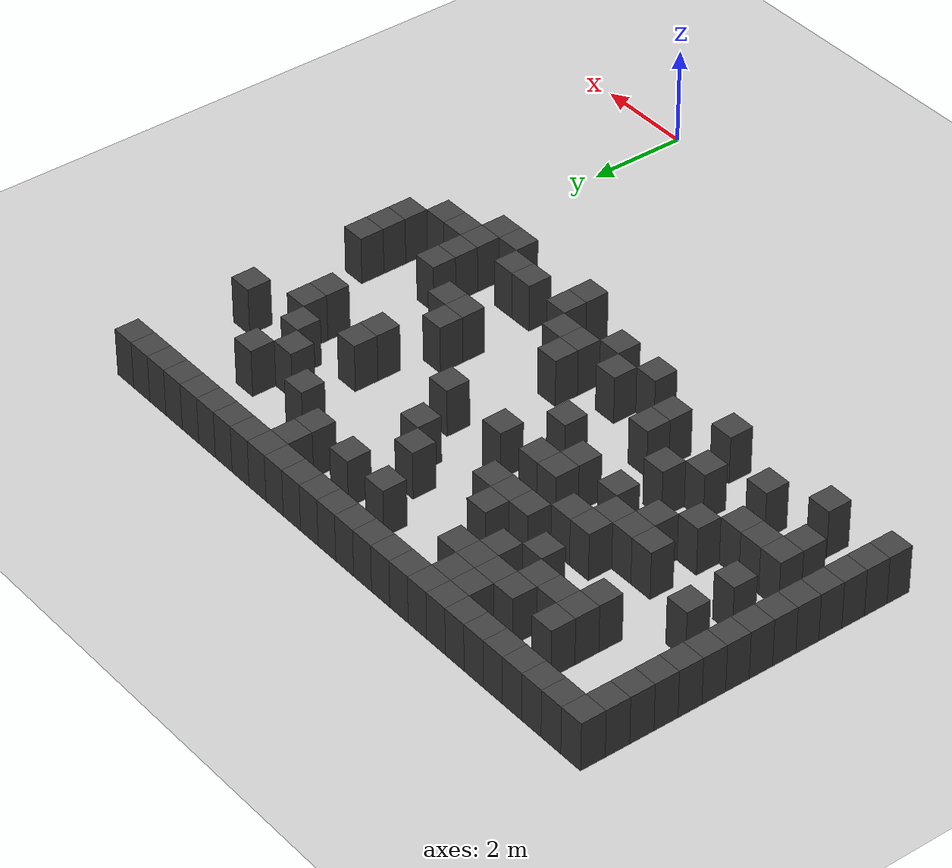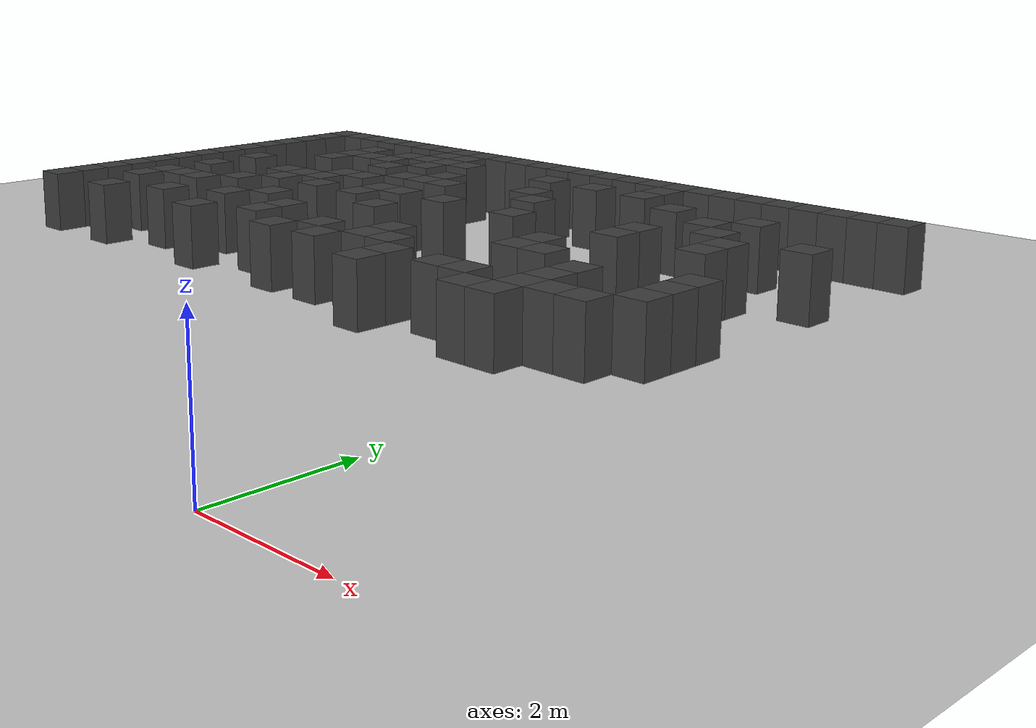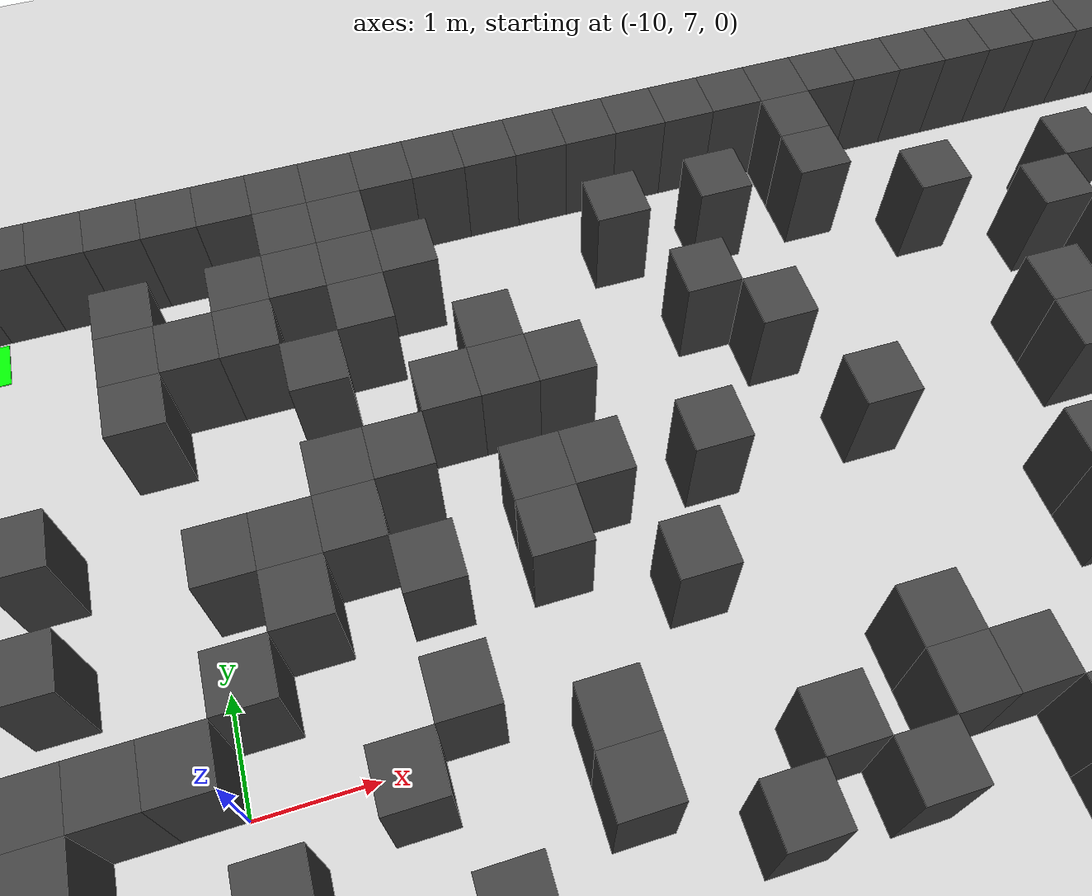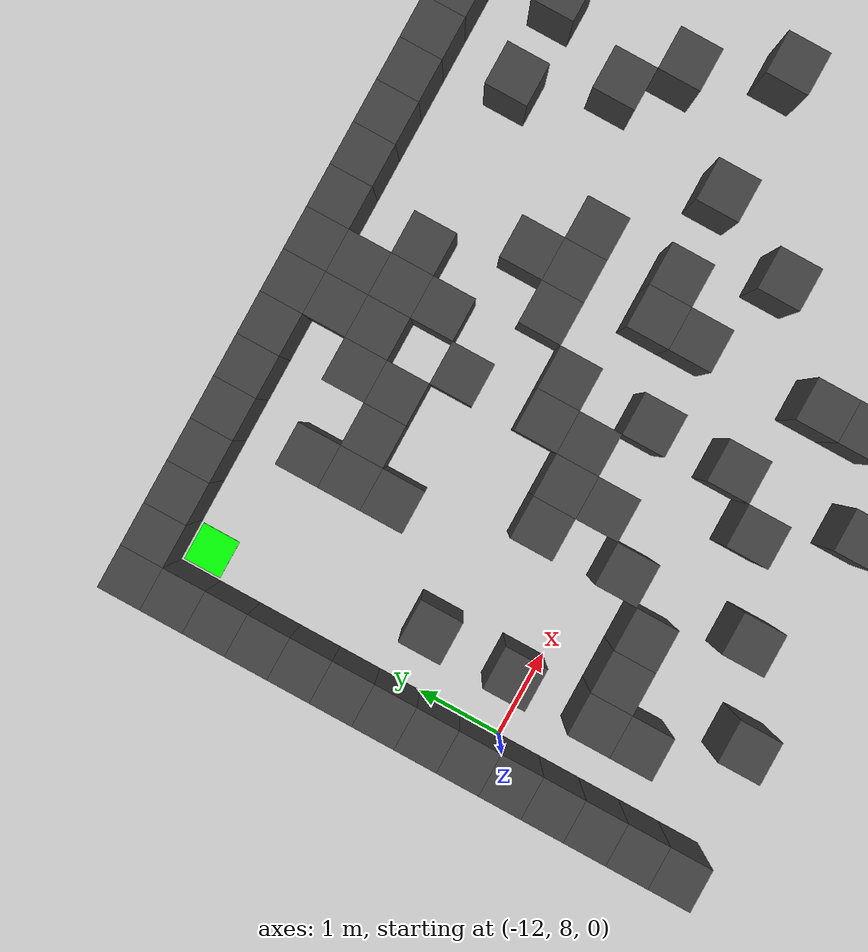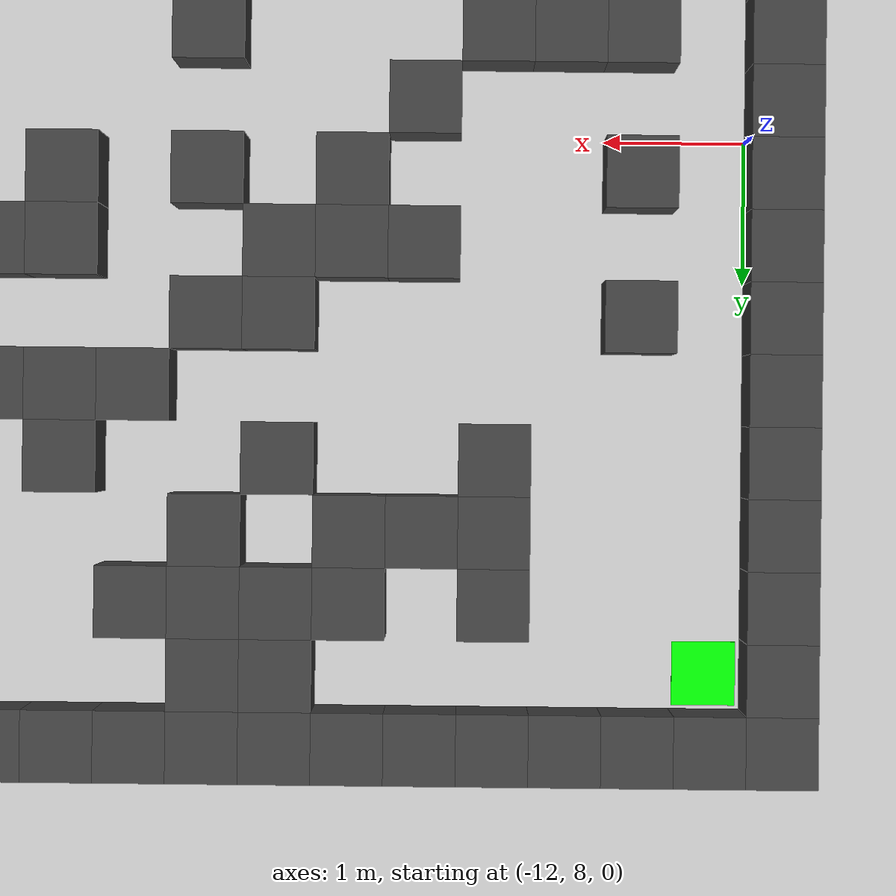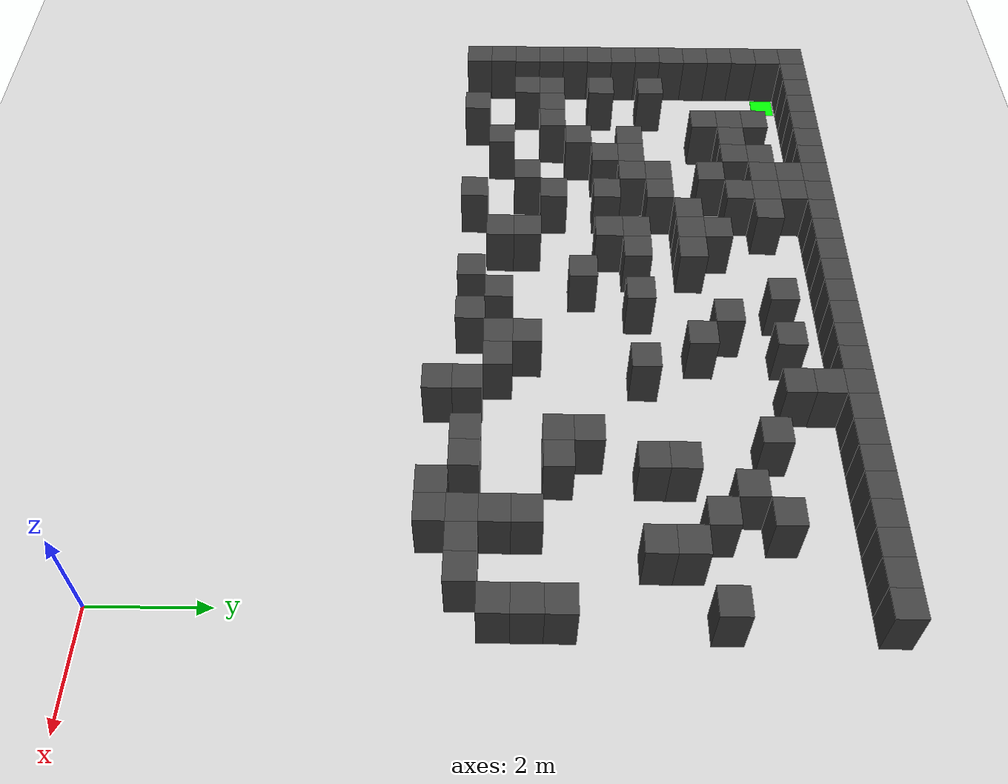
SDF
<sdf version="1.7">
 <world name="map_4822">
  <model name="ground_plane">
   <static>true</static>
   <link name="link">
    <collision name="collision">
     <geometry><plane><normal>0 0 1</normal><size>200 200</size></plane></geometry>
    </collision>
    <visual name="visual">
     <geometry><plane><normal>0 0 1</normal><size>200 200</size></plane></geometry>
     <material><ambient>0.8 0.8 0.8 1</ambient><diffuse>0.8 0.8 0.8 1</diffuse></material>
    </visual>
   </link>
  </model>
  <model name="maze_environment">
   <static>true</static>
   <link name="wall_0">
    <pose>-12.250 12.250 0.500 0 0 0</pose>
    <collision name="col"><geometry><box><size>0.5 0.5 1.0</size></box></geometry></collision>
    <visual name="vis">
     <geometry><box><size>0.5 0.5 1.0</size></box></geometry>
     <material><ambient>0.15 0.15 0.15 1</ambient><diffuse>0.25 0.25 0.25 1</diffuse></material>
    </visual>
   </link>
   <link name="wall_1">
    <pose>-11.750 12.250 0.500 0 0 0</pose>
    <collision name="col"><geometry><box><size>0.5 0.5 1.0</size></box></geometry></collision>
    <visual name="vis">
     <geometry><box><size>0.5 0.5 1.0</size></box></geometry>
     <material><ambient>0.15 0.15 0.15 1</ambient><diffuse>0.25 0.25 0.25 1</diffuse></material>
    </visual>
   </link>
   <link name="wall_2">
    <pose>-11.250 12.250 0.500 0 0 0</pose>
    <collision name="col"><geometry><box><size>0.5 0.5 1.0</size></box></geometry></collision>
    <visual name="vis">
     <geometry><box><size>0.5 0.5 1.0</size></box></geometry>
     <material><ambient>0.15 0.15 0.15 1</ambient><diffuse>0.25 0.25 0.25 1</diffuse></material>
    </visual>
   </link>
   <link name="wall_3">
    <pose>-10.750 12.250 0.500 0 0 0</pose>
    <collision name="col"><geometry><box><size>0.5 0.5 1.0</size></box></geometry></collision>
    <visual name="vis">
     <geometry><box><size>0.5 0.5 1.0</size></box></geometry>
     <material><ambient>0.15 0.15 0.15 1</ambient><diffuse>0.25 0.25 0.25 1</diffuse></material>
    </visual>
   </link>
   <link name="wall_4">
    <pose>-10.250 12.250 0.500 0 0 0</pose>
    <collision name="col"><geometry><box><size>0.5 0.5 1.0</size></box></geometry></collision>
    <visual name="vis">
     <geometry><box><size>0.5 0.5 1.0</size></box></geometry>
     <material><ambient>0.15 0.15 0.15 1</ambient><diffuse>0.25 0.25 0.25 1</diffuse></material>
    </visual>
   </link>
   <link name="wall_5">
    <pose>-9.750 12.250 0.500 0 0 0</pose>
    <collision name="col"><geometry><box><size>0.5 0.5 1.0</size></box></geometry></collision>
    <visual name="vis">
     <geometry><box><size>0.5 0.5 1.0</size></box></geometry>
     <material><ambient>0.15 0.15 0.15 1</ambient><diffuse>0.25 0.25 0.25 1</diffuse></material>
    </visual>
   </link>
   <link name="wall_6">
    <pose>-9.250 12.250 0.500 0 0 0</pose>
    <collision name="col"><geometry><box><size>0.5 0.5 1.0</size></box></geometry></collision>
    <visual name="vis">
     <geometry><box><size>0.5 0.5 1.0</size></box></geometry>
     <material><ambient>0.15 0.15 0.15 1</ambient><diffuse>0.25 0.25 0.25 1</diffuse></material>
    </visual>
   </link>
   <link name="wall_7">
    <pose>-8.750 12.250 0.500 0 0 0</pose>
    <collision name="col"><geometry><box><size>0.5 0.5 1.0</size></box></geometry></collision>
    <visual name="vis">
     <geometry><box><size>0.5 0.5 1.0</size></box></geometry>
     <material><ambient>0.15 0.15 0.15 1</ambient><diffuse>0.25 0.25 0.25 1</diffuse></material>
    </visual>
   </link>
   <link name="wall_8">
    <pose>-8.250 12.250 0.500 0 0 0</pose>
    <collision name="col"><geometry><box><size>0.5 0.5 1.0</size></box></geometry></collision>
    <visual name="vis">
     <geometry><box><size>0.5 0.5 1.0</size></box></geometry>
     <material><ambient>0.15 0.15 0.15 1</ambient><diffuse>0.25 0.25 0.25 1</diffuse></material>
    </visual>
   </link>
   <link name="wall_9">
    <pose>-7.750 12.250 0.500 0 0 0</pose>
    <collision name="col"><geometry><box><size>0.5 0.5 1.0</size></box></geometry></collision>
    <visual name="vis">
     <geometry><box><size>0.5 0.5 1.0</size></box></geometry>
     <material><ambient>0.15 0.15 0.15 1</ambient><diffuse>0.25 0.25 0.25 1</diffuse></material>
    </visual>
   </link>
   <link name="wall_10">
    <pose>-7.250 12.250 0.500 0 0 0</pose>
    <collision name="col"><geometry><box><size>0.5 0.5 1.0</size></box></geometry></collision>
    <visual name="vis">
     <geometry><box><size>0.5 0.5 1.0</size></box></geometry>
     <material><ambient>0.15 0.15 0.15 1</ambient><diffuse>0.25 0.25 0.25 1</diffuse></material>
    </visual>
   </link>
   <link name="wall_11">
    <pose>-6.750 12.250 0.500 0 0 0</pose>
    <collision name="col"><geometry><box><size>0.5 0.5 1.0</size></box></geometry></collision>
    <visual name="vis">
     <geometry><box><size>0.5 0.5 1.0</size></box></geometry>
     <material><ambient>0.15 0.15 0.15 1</ambient><diffuse>0.25 0.25 0.25 1</diffuse></material>
    </visual>
   </link>
   <link name="wall_12">
    <pose>-6.250 12.250 0.500 0 0 0</pose>
    <collision name="col"><geometry><box><size>0.5 0.5 1.0</size></box></geometry></collision>
    <visual name="vis">
     <geometry><box><size>0.5 0.5 1.0</size></box></geometry>
     <material><ambient>0.15 0.15 0.15 1</ambient><diffuse>0.25 0.25 0.25 1</diffuse></material>
    </visual>
   </link>
   <link name="wall_13">
    <pose>-5.750 12.250 0.500 0 0 0</pose>
    <collision name="col"><geometry><box><size>0.5 0.5 1.0</size></box></geometry></collision>
    <visual name="vis">
     <geometry><box><size>0.5 0.5 1.0</size></box></geometry>
     <material><ambient>0.15 0.15 0.15 1</ambient><diffuse>0.25 0.25 0.25 1</diffuse></material>
    </visual>
   </link>
   <link name="wall_14">
    <pose>-5.250 12.250 0.500 0 0 0</pose>
    <collision name="col"><geometry><box><size>0.5 0.5 1.0</size></box></geometry></collision>
    <visual name="vis">
     <geometry><box><size>0.5 0.5 1.0</size></box></geometry>
     <material><ambient>0.15 0.15 0.15 1</ambient><diffuse>0.25 0.25 0.25 1</diffuse></material>
    </visual>
   </link>
   <link name="wall_15">
    <pose>-4.750 12.250 0.500 0 0 0</pose>
    <collision name="col"><geometry><box><size>0.5 0.5 1.0</size></box></geometry></collision>
    <visual name="vis">
     <geometry><box><size>0.5 0.5 1.0</size></box></geometry>
     <material><ambient>0.15 0.15 0.15 1</ambient><diffuse>0.25 0.25 0.25 1</diffuse></material>
    </visual>
   </link>
   <link name="wall_16">
    <pose>-4.250 12.250 0.500 0 0 0</pose>
    <collision name="col"><geometry><box><size>0.5 0.5 1.0</size></box></geometry></collision>
    <visual name="vis">
     <geometry><box><size>0.5 0.5 1.0</size></box></geometry>
     <material><ambient>0.15 0.15 0.15 1</ambient><diffuse>0.25 0.25 0.25 1</diffuse></material>
    </visual>
   </link>
   <link name="wall_17">
    <pose>-3.750 12.250 0.500 0 0 0</pose>
    <collision name="col"><geometry><box><size>0.5 0.5 1.0</size></box></geometry></collision>
    <visual name="vis">
     <geometry><box><size>0.5 0.5 1.0</size></box></geometry>
     <material><ambient>0.15 0.15 0.15 1</ambient><diffuse>0.25 0.25 0.25 1</diffuse></material>
    </visual>
   </link>
   <link name="wall_18">
    <pose>-3.250 12.250 0.500 0 0 0</pose>
    <collision name="col"><geometry><box><size>0.5 0.5 1.0</size></box></geometry></collision>
    <visual name="vis">
     <geometry><box><size>0.5 0.5 1.0</size></box></geometry>
     <material><ambient>0.15 0.15 0.15 1</ambient><diffuse>0.25 0.25 0.25 1</diffuse></material>
    </visual>
   </link>
   <link name="wall_19">
    <pose>-2.750 12.250 0.500 0 0 0</pose>
    <collision name="col"><geometry><box><size>0.5 0.5 1.0</size></box></geometry></collision>
    <visual name="vis">
     <geometry><box><size>0.5 0.5 1.0</size></box></geometry>
     <material><ambient>0.15 0.15 0.15 1</ambient><diffuse>0.25 0.25 0.25 1</diffuse></material>
    </visual>
   </link>
   <link name="wall_20">
    <pose>-2.250 12.250 0.500 0 0 0</pose>
    <collision name="col"><geometry><box><size>0.5 0.5 1.0</size></box></geometry></collision>
    <visual name="vis">
     <geometry><box><size>0.5 0.5 1.0</size></box></geometry>
     <material><ambient>0.15 0.15 0.15 1</ambient><diffuse>0.25 0.25 0.25 1</diffuse></material>
    </visual>
   </link>
   <link name="wall_21">
    <pose>-1.750 12.250 0.500 0 0 0</pose>
    <collision name="col"><geometry><box><size>0.5 0.5 1.0</size></box></geometry></collision>
    <visual name="vis">
     <geometry><box><size>0.5 0.5 1.0</size></box></geometry>
     <material><ambient>0.15 0.15 0.15 1</ambient><diffuse>0.25 0.25 0.25 1</diffuse></material>
    </visual>
   </link>
   <link name="wall_22">
    <pose>-1.250 12.250 0.500 0 0 0</pose>
    <collision name="col"><geometry><box><size>0.5 0.5 1.0</size></box></geometry></collision>
    <visual name="vis">
     <geometry><box><size>0.5 0.5 1.0</size></box></geometry>
     <material><ambient>0.15 0.15 0.15 1</ambient><diffuse>0.25 0.25 0.25 1</diffuse></material>
    </visual>
   </link>
   <link name="wall_23">
    <pose>-0.750 12.250 0.500 0 0 0</pose>
    <collision name="col"><geometry><box><size>0.5 0.5 1.0</size></box></geometry></collision>
    <visual name="vis">
     <geometry><box><size>0.5 0.5 1.0</size></box></geometry>
     <material><ambient>0.15 0.15 0.15 1</ambient><diffuse>0.25 0.25 0.25 1</diffuse></material>
    </visual>
   </link>
   <link name="wall_24">
    <pose>-0.250 12.250 0.500 0 0 0</pose>
    <collision name="col"><geometry><box><size>0.5 0.5 1.0</size></box></geometry></collision>
    <visual name="vis">
     <geometry><box><size>0.5 0.5 1.0</size></box></geometry>
     <material><ambient>0.15 0.15 0.15 1</ambient><diffuse>0.25 0.25 0.25 1</diffuse></material>
    </visual>
   </link>
   <link name="wall_25">
    <pose>0.250 12.250 0.500 0 0 0</pose>
    <collision name="col"><geometry><box><size>0.5 0.5 1.0</size></box></geometry></collision>
    <visual name="vis">
     <geometry><box><size>0.5 0.5 1.0</size></box></geometry>
     <material><ambient>0.15 0.15 0.15 1</ambient><diffuse>0.25 0.25 0.25 1</diffuse></material>
    </visual>
   </link>
   <link name="wall_50">
    <pose>-12.250 11.750 0.500 0 0 0</pose>
    <collision name="col"><geometry><box><size>0.5 0.5 1.0</size></box></geometry></collision>
    <visual name="vis">
     <geometry><box><size>0.5 0.5 1.0</size></box></geometry>
     <material><ambient>0.15 0.15 0.15 1</ambient><diffuse>0.25 0.25 0.25 1</diffuse></material>
    </visual>
   </link>
   <link name="wall_51">
    <pose>-8.750 11.750 0.500 0 0 0</pose>
    <collision name="col"><geometry><box><size>0.5 0.5 1.0</size></box></geometry></collision>
    <visual name="vis">
     <geometry><box><size>0.5 0.5 1.0</size></box></geometry>
     <material><ambient>0.15 0.15 0.15 1</ambient><diffuse>0.25 0.25 0.25 1</diffuse></material>
    </visual>
   </link>
   <link name="wall_52">
    <pose>-8.250 11.750 0.500 0 0 0</pose>
    <collision name="col"><geometry><box><size>0.5 0.5 1.0</size></box></geometry></collision>
    <visual name="vis">
     <geometry><box><size>0.5 0.5 1.0</size></box></geometry>
     <material><ambient>0.15 0.15 0.15 1</ambient><diffuse>0.25 0.25 0.25 1</diffuse></material>
    </visual>
   </link>
   <link name="wall_53">
    <pose>-3.750 11.750 0.500 0 0 0</pose>
    <collision name="col"><geometry><box><size>0.5 0.5 1.0</size></box></geometry></collision>
    <visual name="vis">
     <geometry><box><size>0.5 0.5 1.0</size></box></geometry>
     <material><ambient>0.15 0.15 0.15 1</ambient><diffuse>0.25 0.25 0.25 1</diffuse></material>
    </visual>
   </link>
   <link name="wall_57">
    <pose>-12.250 11.250 0.500 0 0 0</pose>
    <collision name="col"><geometry><box><size>0.5 0.5 1.0</size></box></geometry></collision>
    <visual name="vis">
     <geometry><box><size>0.5 0.5 1.0</size></box></geometry>
     <material><ambient>0.15 0.15 0.15 1</ambient><diffuse>0.25 0.25 0.25 1</diffuse></material>
    </visual>
   </link>
   <link name="wall_58">
    <pose>-10.250 11.250 0.500 0 0 0</pose>
    <collision name="col"><geometry><box><size>0.5 0.5 1.0</size></box></geometry></collision>
    <visual name="vis">
     <geometry><box><size>0.5 0.5 1.0</size></box></geometry>
     <material><ambient>0.15 0.15 0.15 1</ambient><diffuse>0.25 0.25 0.25 1</diffuse></material>
    </visual>
   </link>
   <link name="wall_59">
    <pose>-9.250 11.250 0.500 0 0 0</pose>
    <collision name="col"><geometry><box><size>0.5 0.5 1.0</size></box></geometry></collision>
    <visual name="vis">
     <geometry><box><size>0.5 0.5 1.0</size></box></geometry>
     <material><ambient>0.15 0.15 0.15 1</ambient><diffuse>0.25 0.25 0.25 1</diffuse></material>
    </visual>
   </link>
   <link name="wall_60">
    <pose>-8.750 11.250 0.500 0 0 0</pose>
    <collision name="col"><geometry><box><size>0.5 0.5 1.0</size></box></geometry></collision>
    <visual name="vis">
     <geometry><box><size>0.5 0.5 1.0</size></box></geometry>
     <material><ambient>0.15 0.15 0.15 1</ambient><diffuse>0.25 0.25 0.25 1</diffuse></material>
    </visual>
   </link>
   <link name="wall_61">
    <pose>-8.250 11.250 0.500 0 0 0</pose>
    <collision name="col"><geometry><box><size>0.5 0.5 1.0</size></box></geometry></collision>
    <visual name="vis">
     <geometry><box><size>0.5 0.5 1.0</size></box></geometry>
     <material><ambient>0.15 0.15 0.15 1</ambient><diffuse>0.25 0.25 0.25 1</diffuse></material>
    </visual>
   </link>
   <link name="wall_62">
    <pose>-7.750 11.250 0.500 0 0 0</pose>
    <collision name="col"><geometry><box><size>0.5 0.5 1.0</size></box></geometry></collision>
    <visual name="vis">
     <geometry><box><size>0.5 0.5 1.0</size></box></geometry>
     <material><ambient>0.15 0.15 0.15 1</ambient><diffuse>0.25 0.25 0.25 1</diffuse></material>
    </visual>
   </link>
   <link name="wall_63">
    <pose>-5.750 11.250 0.500 0 0 0</pose>
    <collision name="col"><geometry><box><size>0.5 0.5 1.0</size></box></geometry></collision>
    <visual name="vis">
     <geometry><box><size>0.5 0.5 1.0</size></box></geometry>
     <material><ambient>0.15 0.15 0.15 1</ambient><diffuse>0.25 0.25 0.25 1</diffuse></material>
    </visual>
   </link>
   <link name="wall_64">
    <pose>-4.750 11.250 0.500 0 0 0</pose>
    <collision name="col"><geometry><box><size>0.5 0.5 1.0</size></box></geometry></collision>
    <visual name="vis">
     <geometry><box><size>0.5 0.5 1.0</size></box></geometry>
     <material><ambient>0.15 0.15 0.15 1</ambient><diffuse>0.25 0.25 0.25 1</diffuse></material>
    </visual>
   </link>
   <link name="wall_65">
    <pose>-3.750 11.250 0.500 0 0 0</pose>
    <collision name="col"><geometry><box><size>0.5 0.5 1.0</size></box></geometry></collision>
    <visual name="vis">
     <geometry><box><size>0.5 0.5 1.0</size></box></geometry>
     <material><ambient>0.15 0.15 0.15 1</ambient><diffuse>0.25 0.25 0.25 1</diffuse></material>
    </visual>
   </link>
   <link name="wall_73">
    <pose>-12.250 10.750 0.500 0 0 0</pose>
    <collision name="col"><geometry><box><size>0.5 0.5 1.0</size></box></geometry></collision>
    <visual name="vis">
     <geometry><box><size>0.5 0.5 1.0</size></box></geometry>
     <material><ambient>0.15 0.15 0.15 1</ambient><diffuse>0.25 0.25 0.25 1</diffuse></material>
    </visual>
   </link>
   <link name="wall_74">
    <pose>-10.250 10.750 0.500 0 0 0</pose>
    <collision name="col"><geometry><box><size>0.5 0.5 1.0</size></box></geometry></collision>
    <visual name="vis">
     <geometry><box><size>0.5 0.5 1.0</size></box></geometry>
     <material><ambient>0.15 0.15 0.15 1</ambient><diffuse>0.25 0.25 0.25 1</diffuse></material>
    </visual>
   </link>
   <link name="wall_75">
    <pose>-9.750 10.750 0.500 0 0 0</pose>
    <collision name="col"><geometry><box><size>0.5 0.5 1.0</size></box></geometry></collision>
    <visual name="vis">
     <geometry><box><size>0.5 0.5 1.0</size></box></geometry>
     <material><ambient>0.15 0.15 0.15 1</ambient><diffuse>0.25 0.25 0.25 1</diffuse></material>
    </visual>
   </link>
   <link name="wall_76">
    <pose>-9.250 10.750 0.500 0 0 0</pose>
    <collision name="col"><geometry><box><size>0.5 0.5 1.0</size></box></geometry></collision>
    <visual name="vis">
     <geometry><box><size>0.5 0.5 1.0</size></box></geometry>
     <material><ambient>0.15 0.15 0.15 1</ambient><diffuse>0.25 0.25 0.25 1</diffuse></material>
    </visual>
   </link>
   <link name="wall_77">
    <pose>-8.250 10.750 0.500 0 0 0</pose>
    <collision name="col"><geometry><box><size>0.5 0.5 1.0</size></box></geometry></collision>
    <visual name="vis">
     <geometry><box><size>0.5 0.5 1.0</size></box></geometry>
     <material><ambient>0.15 0.15 0.15 1</ambient><diffuse>0.25 0.25 0.25 1</diffuse></material>
    </visual>
   </link>
   <link name="wall_78">
    <pose>-2.750 10.750 0.500 0 0 0</pose>
    <collision name="col"><geometry><box><size>0.5 0.5 1.0</size></box></geometry></collision>
    <visual name="vis">
     <geometry><box><size>0.5 0.5 1.0</size></box></geometry>
     <material><ambient>0.15 0.15 0.15 1</ambient><diffuse>0.25 0.25 0.25 1</diffuse></material>
    </visual>
   </link>
   <link name="wall_79">
    <pose>-1.250 10.750 0.500 0 0 0</pose>
    <collision name="col"><geometry><box><size>0.5 0.5 1.0</size></box></geometry></collision>
    <visual name="vis">
     <geometry><box><size>0.5 0.5 1.0</size></box></geometry>
     <material><ambient>0.15 0.15 0.15 1</ambient><diffuse>0.25 0.25 0.25 1</diffuse></material>
    </visual>
   </link>
   <link name="wall_89">
    <pose>-12.250 10.250 0.500 0 0 0</pose>
    <collision name="col"><geometry><box><size>0.5 0.5 1.0</size></box></geometry></collision>
    <visual name="vis">
     <geometry><box><size>0.5 0.5 1.0</size></box></geometry>
     <material><ambient>0.15 0.15 0.15 1</ambient><diffuse>0.25 0.25 0.25 1</diffuse></material>
    </visual>
   </link>
   <link name="wall_90">
    <pose>-10.250 10.250 0.500 0 0 0</pose>
    <collision name="col"><geometry><box><size>0.5 0.5 1.0</size></box></geometry></collision>
    <visual name="vis">
     <geometry><box><size>0.5 0.5 1.0</size></box></geometry>
     <material><ambient>0.15 0.15 0.15 1</ambient><diffuse>0.25 0.25 0.25 1</diffuse></material>
    </visual>
   </link>
   <link name="wall_91">
    <pose>-8.750 10.250 0.500 0 0 0</pose>
    <collision name="col"><geometry><box><size>0.5 0.5 1.0</size></box></geometry></collision>
    <visual name="vis">
     <geometry><box><size>0.5 0.5 1.0</size></box></geometry>
     <material><ambient>0.15 0.15 0.15 1</ambient><diffuse>0.25 0.25 0.25 1</diffuse></material>
    </visual>
   </link>
   <link name="wall_92">
    <pose>-7.250 10.250 0.500 0 0 0</pose>
    <collision name="col"><geometry><box><size>0.5 0.5 1.0</size></box></geometry></collision>
    <visual name="vis">
     <geometry><box><size>0.5 0.5 1.0</size></box></geometry>
     <material><ambient>0.15 0.15 0.15 1</ambient><diffuse>0.25 0.25 0.25 1</diffuse></material>
    </visual>
   </link>
   <link name="wall_93">
    <pose>-5.250 10.250 0.500 0 0 0</pose>
    <collision name="col"><geometry><box><size>0.5 0.5 1.0</size></box></geometry></collision>
    <visual name="vis">
     <geometry><box><size>0.5 0.5 1.0</size></box></geometry>
     <material><ambient>0.15 0.15 0.15 1</ambient><diffuse>0.25 0.25 0.25 1</diffuse></material>
    </visual>
   </link>
   <link name="wall_94">
    <pose>-1.750 10.250 0.500 0 0 0</pose>
    <collision name="col"><geometry><box><size>0.5 0.5 1.0</size></box></geometry></collision>
    <visual name="vis">
     <geometry><box><size>0.5 0.5 1.0</size></box></geometry>
     <material><ambient>0.15 0.15 0.15 1</ambient><diffuse>0.25 0.25 0.25 1</diffuse></material>
    </visual>
   </link>
   <link name="wall_102">
    <pose>-12.250 9.750 0.500 0 0 0</pose>
    <collision name="col"><geometry><box><size>0.5 0.5 1.0</size></box></geometry></collision>
    <visual name="vis">
     <geometry><box><size>0.5 0.5 1.0</size></box></geometry>
     <material><ambient>0.15 0.15 0.15 1</ambient><diffuse>0.25 0.25 0.25 1</diffuse></material>
    </visual>
   </link>
   <link name="wall_103">
    <pose>-7.750 9.750 0.500 0 0 0</pose>
    <collision name="col"><geometry><box><size>0.5 0.5 1.0</size></box></geometry></collision>
    <visual name="vis">
     <geometry><box><size>0.5 0.5 1.0</size></box></geometry>
     <material><ambient>0.15 0.15 0.15 1</ambient><diffuse>0.25 0.25 0.25 1</diffuse></material>
    </visual>
   </link>
   <link name="wall_104">
    <pose>-7.250 9.750 0.500 0 0 0</pose>
    <collision name="col"><geometry><box><size>0.5 0.5 1.0</size></box></geometry></collision>
    <visual name="vis">
     <geometry><box><size>0.5 0.5 1.0</size></box></geometry>
     <material><ambient>0.15 0.15 0.15 1</ambient><diffuse>0.25 0.25 0.25 1</diffuse></material>
    </visual>
   </link>
   <link name="wall_105">
    <pose>-6.750 9.750 0.500 0 0 0</pose>
    <collision name="col"><geometry><box><size>0.5 0.5 1.0</size></box></geometry></collision>
    <visual name="vis">
     <geometry><box><size>0.5 0.5 1.0</size></box></geometry>
     <material><ambient>0.15 0.15 0.15 1</ambient><diffuse>0.25 0.25 0.25 1</diffuse></material>
    </visual>
   </link>
   <link name="wall_106">
    <pose>-4.750 9.750 0.500 0 0 0</pose>
    <collision name="col"><geometry><box><size>0.5 0.5 1.0</size></box></geometry></collision>
    <visual name="vis">
     <geometry><box><size>0.5 0.5 1.0</size></box></geometry>
     <material><ambient>0.15 0.15 0.15 1</ambient><diffuse>0.25 0.25 0.25 1</diffuse></material>
    </visual>
   </link>
   <link name="wall_107">
    <pose>-1.250 9.750 0.500 0 0 0</pose>
    <collision name="col"><geometry><box><size>0.5 0.5 1.0</size></box></geometry></collision>
    <visual name="vis">
     <geometry><box><size>0.5 0.5 1.0</size></box></geometry>
     <material><ambient>0.15 0.15 0.15 1</ambient><diffuse>0.25 0.25 0.25 1</diffuse></material>
    </visual>
   </link>
   <link name="wall_108">
    <pose>0.250 9.750 0.500 0 0 0</pose>
    <collision name="col"><geometry><box><size>0.5 0.5 1.0</size></box></geometry></collision>
    <visual name="vis">
     <geometry><box><size>0.5 0.5 1.0</size></box></geometry>
     <material><ambient>0.15 0.15 0.15 1</ambient><diffuse>0.25 0.25 0.25 1</diffuse></material>
    </visual>
   </link>
   <link name="wall_116">
    <pose>-12.250 9.250 0.500 0 0 0</pose>
    <collision name="col"><geometry><box><size>0.5 0.5 1.0</size></box></geometry></collision>
    <visual name="vis">
     <geometry><box><size>0.5 0.5 1.0</size></box></geometry>
     <material><ambient>0.15 0.15 0.15 1</ambient><diffuse>0.25 0.25 0.25 1</diffuse></material>
    </visual>
   </link>
   <link name="wall_117">
    <pose>-11.250 9.250 0.500 0 0 0</pose>
    <collision name="col"><geometry><box><size>0.5 0.5 1.0</size></box></geometry></collision>
    <visual name="vis">
     <geometry><box><size>0.5 0.5 1.0</size></box></geometry>
     <material><ambient>0.15 0.15 0.15 1</ambient><diffuse>0.25 0.25 0.25 1</diffuse></material>
    </visual>
   </link>
   <link name="wall_118">
    <pose>-8.750 9.250 0.500 0 0 0</pose>
    <collision name="col"><geometry><box><size>0.5 0.5 1.0</size></box></geometry></collision>
    <visual name="vis">
     <geometry><box><size>0.5 0.5 1.0</size></box></geometry>
     <material><ambient>0.15 0.15 0.15 1</ambient><diffuse>0.25 0.25 0.25 1</diffuse></material>
    </visual>
   </link>
   <link name="wall_119">
    <pose>-8.250 9.250 0.500 0 0 0</pose>
    <collision name="col"><geometry><box><size>0.5 0.5 1.0</size></box></geometry></collision>
    <visual name="vis">
     <geometry><box><size>0.5 0.5 1.0</size></box></geometry>
     <material><ambient>0.15 0.15 0.15 1</ambient><diffuse>0.25 0.25 0.25 1</diffuse></material>
    </visual>
   </link>
   <link name="wall_120">
    <pose>-2.250 9.250 0.500 0 0 0</pose>
    <collision name="col"><geometry><box><size>0.5 0.5 1.0</size></box></geometry></collision>
    <visual name="vis">
     <geometry><box><size>0.5 0.5 1.0</size></box></geometry>
     <material><ambient>0.15 0.15 0.15 1</ambient><diffuse>0.25 0.25 0.25 1</diffuse></material>
    </visual>
   </link>
   <link name="wall_121">
    <pose>-0.750 9.250 0.500 0 0 0</pose>
    <collision name="col"><geometry><box><size>0.5 0.5 1.0</size></box></geometry></collision>
    <visual name="vis">
     <geometry><box><size>0.5 0.5 1.0</size></box></geometry>
     <material><ambient>0.15 0.15 0.15 1</ambient><diffuse>0.25 0.25 0.25 1</diffuse></material>
    </visual>
   </link>
   <link name="wall_125">
    <pose>-12.250 8.750 0.500 0 0 0</pose>
    <collision name="col"><geometry><box><size>0.5 0.5 1.0</size></box></geometry></collision>
    <visual name="vis">
     <geometry><box><size>0.5 0.5 1.0</size></box></geometry>
     <material><ambient>0.15 0.15 0.15 1</ambient><diffuse>0.25 0.25 0.25 1</diffuse></material>
    </visual>
   </link>
   <link name="wall_126">
    <pose>-9.750 8.750 0.500 0 0 0</pose>
    <collision name="col"><geometry><box><size>0.5 0.5 1.0</size></box></geometry></collision>
    <visual name="vis">
     <geometry><box><size>0.5 0.5 1.0</size></box></geometry>
     <material><ambient>0.15 0.15 0.15 1</ambient><diffuse>0.25 0.25 0.25 1</diffuse></material>
    </visual>
   </link>
   <link name="wall_127">
    <pose>-9.250 8.750 0.500 0 0 0</pose>
    <collision name="col"><geometry><box><size>0.5 0.5 1.0</size></box></geometry></collision>
    <visual name="vis">
     <geometry><box><size>0.5 0.5 1.0</size></box></geometry>
     <material><ambient>0.15 0.15 0.15 1</ambient><diffuse>0.25 0.25 0.25 1</diffuse></material>
    </visual>
   </link>
   <link name="wall_128">
    <pose>-8.750 8.750 0.500 0 0 0</pose>
    <collision name="col"><geometry><box><size>0.5 0.5 1.0</size></box></geometry></collision>
    <visual name="vis">
     <geometry><box><size>0.5 0.5 1.0</size></box></geometry>
     <material><ambient>0.15 0.15 0.15 1</ambient><diffuse>0.25 0.25 0.25 1</diffuse></material>
    </visual>
   </link>
   <link name="wall_129">
    <pose>-7.250 8.750 0.500 0 0 0</pose>
    <collision name="col"><geometry><box><size>0.5 0.5 1.0</size></box></geometry></collision>
    <visual name="vis">
     <geometry><box><size>0.5 0.5 1.0</size></box></geometry>
     <material><ambient>0.15 0.15 0.15 1</ambient><diffuse>0.25 0.25 0.25 1</diffuse></material>
    </visual>
   </link>
   <link name="wall_130">
    <pose>-6.750 8.750 0.500 0 0 0</pose>
    <collision name="col"><geometry><box><size>0.5 0.5 1.0</size></box></geometry></collision>
    <visual name="vis">
     <geometry><box><size>0.5 0.5 1.0</size></box></geometry>
     <material><ambient>0.15 0.15 0.15 1</ambient><diffuse>0.25 0.25 0.25 1</diffuse></material>
    </visual>
   </link>
   <link name="wall_131">
    <pose>-5.750 8.750 0.500 0 0 0</pose>
    <collision name="col"><geometry><box><size>0.5 0.5 1.0</size></box></geometry></collision>
    <visual name="vis">
     <geometry><box><size>0.5 0.5 1.0</size></box></geometry>
     <material><ambient>0.15 0.15 0.15 1</ambient><diffuse>0.25 0.25 0.25 1</diffuse></material>
    </visual>
   </link>
   <link name="wall_132">
    <pose>-4.250 8.750 0.500 0 0 0</pose>
    <collision name="col"><geometry><box><size>0.5 0.5 1.0</size></box></geometry></collision>
    <visual name="vis">
     <geometry><box><size>0.5 0.5 1.0</size></box></geometry>
     <material><ambient>0.15 0.15 0.15 1</ambient><diffuse>0.25 0.25 0.25 1</diffuse></material>
    </visual>
   </link>
   <link name="wall_133">
    <pose>-2.250 8.750 0.500 0 0 0</pose>
    <collision name="col"><geometry><box><size>0.5 0.5 1.0</size></box></geometry></collision>
    <visual name="vis">
     <geometry><box><size>0.5 0.5 1.0</size></box></geometry>
     <material><ambient>0.15 0.15 0.15 1</ambient><diffuse>0.25 0.25 0.25 1</diffuse></material>
    </visual>
   </link>
   <link name="wall_134">
    <pose>-0.750 8.750 0.500 0 0 0</pose>
    <collision name="col"><geometry><box><size>0.5 0.5 1.0</size></box></geometry></collision>
    <visual name="vis">
     <geometry><box><size>0.5 0.5 1.0</size></box></geometry>
     <material><ambient>0.15 0.15 0.15 1</ambient><diffuse>0.25 0.25 0.25 1</diffuse></material>
    </visual>
   </link>
   <link name="wall_142">
    <pose>-12.250 8.250 0.500 0 0 0</pose>
    <collision name="col"><geometry><box><size>0.5 0.5 1.0</size></box></geometry></collision>
    <visual name="vis">
     <geometry><box><size>0.5 0.5 1.0</size></box></geometry>
     <material><ambient>0.15 0.15 0.15 1</ambient><diffuse>0.25 0.25 0.25 1</diffuse></material>
    </visual>
   </link>
   <link name="wall_143">
    <pose>-11.250 8.250 0.500 0 0 0</pose>
    <collision name="col"><geometry><box><size>0.5 0.5 1.0</size></box></geometry></collision>
    <visual name="vis">
     <geometry><box><size>0.5 0.5 1.0</size></box></geometry>
     <material><ambient>0.15 0.15 0.15 1</ambient><diffuse>0.25 0.25 0.25 1</diffuse></material>
    </visual>
   </link>
   <link name="wall_144">
    <pose>-9.250 8.250 0.500 0 0 0</pose>
    <collision name="col"><geometry><box><size>0.5 0.5 1.0</size></box></geometry></collision>
    <visual name="vis">
     <geometry><box><size>0.5 0.5 1.0</size></box></geometry>
     <material><ambient>0.15 0.15 0.15 1</ambient><diffuse>0.25 0.25 0.25 1</diffuse></material>
    </visual>
   </link>
   <link name="wall_145">
    <pose>-8.250 8.250 0.500 0 0 0</pose>
    <collision name="col"><geometry><box><size>0.5 0.5 1.0</size></box></geometry></collision>
    <visual name="vis">
     <geometry><box><size>0.5 0.5 1.0</size></box></geometry>
     <material><ambient>0.15 0.15 0.15 1</ambient><diffuse>0.25 0.25 0.25 1</diffuse></material>
    </visual>
   </link>
   <link name="wall_146">
    <pose>-7.250 8.250 0.500 0 0 0</pose>
    <collision name="col"><geometry><box><size>0.5 0.5 1.0</size></box></geometry></collision>
    <visual name="vis">
     <geometry><box><size>0.5 0.5 1.0</size></box></geometry>
     <material><ambient>0.15 0.15 0.15 1</ambient><diffuse>0.25 0.25 0.25 1</diffuse></material>
    </visual>
   </link>
   <link name="wall_151">
    <pose>-12.250 7.750 0.500 0 0 0</pose>
    <collision name="col"><geometry><box><size>0.5 0.5 1.0</size></box></geometry></collision>
    <visual name="vis">
     <geometry><box><size>0.5 0.5 1.0</size></box></geometry>
     <material><ambient>0.15 0.15 0.15 1</ambient><diffuse>0.25 0.25 0.25 1</diffuse></material>
    </visual>
   </link>
   <link name="wall_152">
    <pose>-9.750 7.750 0.500 0 0 0</pose>
    <collision name="col"><geometry><box><size>0.5 0.5 1.0</size></box></geometry></collision>
    <visual name="vis">
     <geometry><box><size>0.5 0.5 1.0</size></box></geometry>
     <material><ambient>0.15 0.15 0.15 1</ambient><diffuse>0.25 0.25 0.25 1</diffuse></material>
    </visual>
   </link>
   <link name="wall_153">
    <pose>-6.250 7.750 0.500 0 0 0</pose>
    <collision name="col"><geometry><box><size>0.5 0.5 1.0</size></box></geometry></collision>
    <visual name="vis">
     <geometry><box><size>0.5 0.5 1.0</size></box></geometry>
     <material><ambient>0.15 0.15 0.15 1</ambient><diffuse>0.25 0.25 0.25 1</diffuse></material>
    </visual>
   </link>
   <link name="wall_154">
    <pose>-2.750 7.750 0.500 0 0 0</pose>
    <collision name="col"><geometry><box><size>0.5 0.5 1.0</size></box></geometry></collision>
    <visual name="vis">
     <geometry><box><size>0.5 0.5 1.0</size></box></geometry>
     <material><ambient>0.15 0.15 0.15 1</ambient><diffuse>0.25 0.25 0.25 1</diffuse></material>
    </visual>
   </link>
   <link name="wall_162">
    <pose>-12.250 7.250 0.500 0 0 0</pose>
    <collision name="col"><geometry><box><size>0.5 0.5 1.0</size></box></geometry></collision>
    <visual name="vis">
     <geometry><box><size>0.5 0.5 1.0</size></box></geometry>
     <material><ambient>0.15 0.15 0.15 1</ambient><diffuse>0.25 0.25 0.25 1</diffuse></material>
    </visual>
   </link>
   <link name="wall_163">
    <pose>-11.250 7.250 0.500 0 0 0</pose>
    <collision name="col"><geometry><box><size>0.5 0.5 1.0</size></box></geometry></collision>
    <visual name="vis">
     <geometry><box><size>0.5 0.5 1.0</size></box></geometry>
     <material><ambient>0.15 0.15 0.15 1</ambient><diffuse>0.25 0.25 0.25 1</diffuse></material>
    </visual>
   </link>
   <link name="wall_164">
    <pose>-10.750 7.250 0.500 0 0 0</pose>
    <collision name="col"><geometry><box><size>0.5 0.5 1.0</size></box></geometry></collision>
    <visual name="vis">
     <geometry><box><size>0.5 0.5 1.0</size></box></geometry>
     <material><ambient>0.15 0.15 0.15 1</ambient><diffuse>0.25 0.25 0.25 1</diffuse></material>
    </visual>
   </link>
   <link name="wall_165">
    <pose>-10.250 7.250 0.500 0 0 0</pose>
    <collision name="col"><geometry><box><size>0.5 0.5 1.0</size></box></geometry></collision>
    <visual name="vis">
     <geometry><box><size>0.5 0.5 1.0</size></box></geometry>
     <material><ambient>0.15 0.15 0.15 1</ambient><diffuse>0.25 0.25 0.25 1</diffuse></material>
    </visual>
   </link>
   <link name="wall_166">
    <pose>-8.250 7.250 0.500 0 0 0</pose>
    <collision name="col"><geometry><box><size>0.5 0.5 1.0</size></box></geometry></collision>
    <visual name="vis">
     <geometry><box><size>0.5 0.5 1.0</size></box></geometry>
     <material><ambient>0.15 0.15 0.15 1</ambient><diffuse>0.25 0.25 0.25 1</diffuse></material>
    </visual>
   </link>
   <link name="wall_167">
    <pose>-2.750 7.250 0.500 0 0 0</pose>
    <collision name="col"><geometry><box><size>0.5 0.5 1.0</size></box></geometry></collision>
    <visual name="vis">
     <geometry><box><size>0.5 0.5 1.0</size></box></geometry>
     <material><ambient>0.15 0.15 0.15 1</ambient><diffuse>0.25 0.25 0.25 1</diffuse></material>
    </visual>
   </link>
   <link name="wall_168">
    <pose>-2.250 7.250 0.500 0 0 0</pose>
    <collision name="col"><geometry><box><size>0.5 0.5 1.0</size></box></geometry></collision>
    <visual name="vis">
     <geometry><box><size>0.5 0.5 1.0</size></box></geometry>
     <material><ambient>0.15 0.15 0.15 1</ambient><diffuse>0.25 0.25 0.25 1</diffuse></material>
    </visual>
   </link>
   <link name="wall_169">
    <pose>0.250 7.250 0.500 0 0 0</pose>
    <collision name="col"><geometry><box><size>0.5 0.5 1.0</size></box></geometry></collision>
    <visual name="vis">
     <geometry><box><size>0.5 0.5 1.0</size></box></geometry>
     <material><ambient>0.15 0.15 0.15 1</ambient><diffuse>0.25 0.25 0.25 1</diffuse></material>
    </visual>
   </link>
   <link name="wall_175">
    <pose>-12.250 6.750 0.500 0 0 0</pose>
    <collision name="col"><geometry><box><size>0.5 0.5 1.0</size></box></geometry></collision>
    <visual name="vis">
     <geometry><box><size>0.5 0.5 1.0</size></box></geometry>
     <material><ambient>0.15 0.15 0.15 1</ambient><diffuse>0.25 0.25 0.25 1</diffuse></material>
    </visual>
   </link>
   <link name="wall_176">
    <pose>-11.250 6.750 0.500 0 0 0</pose>
    <collision name="col"><geometry><box><size>0.5 0.5 1.0</size></box></geometry></collision>
    <visual name="vis">
     <geometry><box><size>0.5 0.5 1.0</size></box></geometry>
     <material><ambient>0.15 0.15 0.15 1</ambient><diffuse>0.25 0.25 0.25 1</diffuse></material>
    </visual>
   </link>
   <link name="wall_177">
    <pose>-8.750 6.750 0.500 0 0 0</pose>
    <collision name="col"><geometry><box><size>0.5 0.5 1.0</size></box></geometry></collision>
    <visual name="vis">
     <geometry><box><size>0.5 0.5 1.0</size></box></geometry>
     <material><ambient>0.15 0.15 0.15 1</ambient><diffuse>0.25 0.25 0.25 1</diffuse></material>
    </visual>
   </link>
   <link name="wall_178">
    <pose>-7.250 6.750 0.500 0 0 0</pose>
    <collision name="col"><geometry><box><size>0.5 0.5 1.0</size></box></geometry></collision>
    <visual name="vis">
     <geometry><box><size>0.5 0.5 1.0</size></box></geometry>
     <material><ambient>0.15 0.15 0.15 1</ambient><diffuse>0.25 0.25 0.25 1</diffuse></material>
    </visual>
   </link>
   <link name="wall_179">
    <pose>-4.750 6.750 0.500 0 0 0</pose>
    <collision name="col"><geometry><box><size>0.5 0.5 1.0</size></box></geometry></collision>
    <visual name="vis">
     <geometry><box><size>0.5 0.5 1.0</size></box></geometry>
     <material><ambient>0.15 0.15 0.15 1</ambient><diffuse>0.25 0.25 0.25 1</diffuse></material>
    </visual>
   </link>
   <link name="wall_180">
    <pose>-1.250 6.750 0.500 0 0 0</pose>
    <collision name="col"><geometry><box><size>0.5 0.5 1.0</size></box></geometry></collision>
    <visual name="vis">
     <geometry><box><size>0.5 0.5 1.0</size></box></geometry>
     <material><ambient>0.15 0.15 0.15 1</ambient><diffuse>0.25 0.25 0.25 1</diffuse></material>
    </visual>
   </link>
   <link name="wall_181">
    <pose>0.250 6.750 0.500 0 0 0</pose>
    <collision name="col"><geometry><box><size>0.5 0.5 1.0</size></box></geometry></collision>
    <visual name="vis">
     <geometry><box><size>0.5 0.5 1.0</size></box></geometry>
     <material><ambient>0.15 0.15 0.15 1</ambient><diffuse>0.25 0.25 0.25 1</diffuse></material>
    </visual>
   </link>
   <link name="wall_188">
    <pose>-12.250 6.250 0.500 0 0 0</pose>
    <collision name="col"><geometry><box><size>0.5 0.5 1.0</size></box></geometry></collision>
    <visual name="vis">
     <geometry><box><size>0.5 0.5 1.0</size></box></geometry>
     <material><ambient>0.15 0.15 0.15 1</ambient><diffuse>0.25 0.25 0.25 1</diffuse></material>
    </visual>
   </link>
   <link name="wall_189">
    <pose>-9.750 6.250 0.500 0 0 0</pose>
    <collision name="col"><geometry><box><size>0.5 0.5 1.0</size></box></geometry></collision>
    <visual name="vis">
     <geometry><box><size>0.5 0.5 1.0</size></box></geometry>
     <material><ambient>0.15 0.15 0.15 1</ambient><diffuse>0.25 0.25 0.25 1</diffuse></material>
    </visual>
   </link>
   <link name="wall_190">
    <pose>-7.250 6.250 0.500 0 0 0</pose>
    <collision name="col"><geometry><box><size>0.5 0.5 1.0</size></box></geometry></collision>
    <visual name="vis">
     <geometry><box><size>0.5 0.5 1.0</size></box></geometry>
     <material><ambient>0.15 0.15 0.15 1</ambient><diffuse>0.25 0.25 0.25 1</diffuse></material>
    </visual>
   </link>
   <link name="wall_191">
    <pose>-5.750 6.250 0.500 0 0 0</pose>
    <collision name="col"><geometry><box><size>0.5 0.5 1.0</size></box></geometry></collision>
    <visual name="vis">
     <geometry><box><size>0.5 0.5 1.0</size></box></geometry>
     <material><ambient>0.15 0.15 0.15 1</ambient><diffuse>0.25 0.25 0.25 1</diffuse></material>
    </visual>
   </link>
   <link name="wall_192">
    <pose>-4.750 6.250 0.500 0 0 0</pose>
    <collision name="col"><geometry><box><size>0.5 0.5 1.0</size></box></geometry></collision>
    <visual name="vis">
     <geometry><box><size>0.5 0.5 1.0</size></box></geometry>
     <material><ambient>0.15 0.15 0.15 1</ambient><diffuse>0.25 0.25 0.25 1</diffuse></material>
    </visual>
   </link>
   <link name="wall_193">
    <pose>-4.250 6.250 0.500 0 0 0</pose>
    <collision name="col"><geometry><box><size>0.5 0.5 1.0</size></box></geometry></collision>
    <visual name="vis">
     <geometry><box><size>0.5 0.5 1.0</size></box></geometry>
     <material><ambient>0.15 0.15 0.15 1</ambient><diffuse>0.25 0.25 0.25 1</diffuse></material>
    </visual>
   </link>
   <link name="wall_194">
    <pose>-1.250 6.250 0.500 0 0 0</pose>
    <collision name="col"><geometry><box><size>0.5 0.5 1.0</size></box></geometry></collision>
    <visual name="vis">
     <geometry><box><size>0.5 0.5 1.0</size></box></geometry>
     <material><ambient>0.15 0.15 0.15 1</ambient><diffuse>0.25 0.25 0.25 1</diffuse></material>
    </visual>
   </link>
   <link name="wall_195">
    <pose>0.250 6.250 0.500 0 0 0</pose>
    <collision name="col"><geometry><box><size>0.5 0.5 1.0</size></box></geometry></collision>
    <visual name="vis">
     <geometry><box><size>0.5 0.5 1.0</size></box></geometry>
     <material><ambient>0.15 0.15 0.15 1</ambient><diffuse>0.25 0.25 0.25 1</diffuse></material>
    </visual>
   </link>
   <link name="wall_201">
    <pose>-12.250 5.750 0.500 0 0 0</pose>
    <collision name="col"><geometry><box><size>0.5 0.5 1.0</size></box></geometry></collision>
    <visual name="vis">
     <geometry><box><size>0.5 0.5 1.0</size></box></geometry>
     <material><ambient>0.15 0.15 0.15 1</ambient><diffuse>0.25 0.25 0.25 1</diffuse></material>
    </visual>
   </link>
   <link name="wall_202">
    <pose>-10.750 5.750 0.500 0 0 0</pose>
    <collision name="col"><geometry><box><size>0.5 0.5 1.0</size></box></geometry></collision>
    <visual name="vis">
     <geometry><box><size>0.5 0.5 1.0</size></box></geometry>
     <material><ambient>0.15 0.15 0.15 1</ambient><diffuse>0.25 0.25 0.25 1</diffuse></material>
    </visual>
   </link>
   <link name="wall_203">
    <pose>-8.250 5.750 0.500 0 0 0</pose>
    <collision name="col"><geometry><box><size>0.5 0.5 1.0</size></box></geometry></collision>
    <visual name="vis">
     <geometry><box><size>0.5 0.5 1.0</size></box></geometry>
     <material><ambient>0.15 0.15 0.15 1</ambient><diffuse>0.25 0.25 0.25 1</diffuse></material>
    </visual>
   </link>
   <link name="wall_204">
    <pose>-6.250 5.750 0.500 0 0 0</pose>
    <collision name="col"><geometry><box><size>0.5 0.5 1.0</size></box></geometry></collision>
    <visual name="vis">
     <geometry><box><size>0.5 0.5 1.0</size></box></geometry>
     <material><ambient>0.15 0.15 0.15 1</ambient><diffuse>0.25 0.25 0.25 1</diffuse></material>
    </visual>
   </link>
   <link name="wall_205">
    <pose>-5.250 5.750 0.500 0 0 0</pose>
    <collision name="col"><geometry><box><size>0.5 0.5 1.0</size></box></geometry></collision>
    <visual name="vis">
     <geometry><box><size>0.5 0.5 1.0</size></box></geometry>
     <material><ambient>0.15 0.15 0.15 1</ambient><diffuse>0.25 0.25 0.25 1</diffuse></material>
    </visual>
   </link>
   <link name="wall_206">
    <pose>-3.750 5.750 0.500 0 0 0</pose>
    <collision name="col"><geometry><box><size>0.5 0.5 1.0</size></box></geometry></collision>
    <visual name="vis">
     <geometry><box><size>0.5 0.5 1.0</size></box></geometry>
     <material><ambient>0.15 0.15 0.15 1</ambient><diffuse>0.25 0.25 0.25 1</diffuse></material>
    </visual>
   </link>
   <link name="wall_207">
    <pose>-2.750 5.750 0.500 0 0 0</pose>
    <collision name="col"><geometry><box><size>0.5 0.5 1.0</size></box></geometry></collision>
    <visual name="vis">
     <geometry><box><size>0.5 0.5 1.0</size></box></geometry>
     <material><ambient>0.15 0.15 0.15 1</ambient><diffuse>0.25 0.25 0.25 1</diffuse></material>
    </visual>
   </link>
   <link name="wall_208">
    <pose>-2.250 5.750 0.500 0 0 0</pose>
    <collision name="col"><geometry><box><size>0.5 0.5 1.0</size></box></geometry></collision>
    <visual name="vis">
     <geometry><box><size>0.5 0.5 1.0</size></box></geometry>
     <material><ambient>0.15 0.15 0.15 1</ambient><diffuse>0.25 0.25 0.25 1</diffuse></material>
    </visual>
   </link>
   <link name="wall_209">
    <pose>-1.250 5.750 0.500 0 0 0</pose>
    <collision name="col"><geometry><box><size>0.5 0.5 1.0</size></box></geometry></collision>
    <visual name="vis">
     <geometry><box><size>0.5 0.5 1.0</size></box></geometry>
     <material><ambient>0.15 0.15 0.15 1</ambient><diffuse>0.25 0.25 0.25 1</diffuse></material>
    </visual>
   </link>
   <link name="wall_210">
    <pose>-0.750 5.750 0.500 0 0 0</pose>
    <collision name="col"><geometry><box><size>0.5 0.5 1.0</size></box></geometry></collision>
    <visual name="vis">
     <geometry><box><size>0.5 0.5 1.0</size></box></geometry>
     <material><ambient>0.15 0.15 0.15 1</ambient><diffuse>0.25 0.25 0.25 1</diffuse></material>
    </visual>
   </link>
   <link name="wall_211">
    <pose>-0.250 5.750 0.500 0 0 0</pose>
    <collision name="col"><geometry><box><size>0.5 0.5 1.0</size></box></geometry></collision>
    <visual name="vis">
     <geometry><box><size>0.5 0.5 1.0</size></box></geometry>
     <material><ambient>0.15 0.15 0.15 1</ambient><diffuse>0.25 0.25 0.25 1</diffuse></material>
    </visual>
   </link>
   <link name="wall_219">
    <pose>-3.750 5.250 0.500 0 0 0</pose>
    <collision name="col"><geometry><box><size>0.5 0.5 1.0</size></box></geometry></collision>
    <visual name="vis">
     <geometry><box><size>0.5 0.5 1.0</size></box></geometry>
     <material><ambient>0.15 0.15 0.15 1</ambient><diffuse>0.25 0.25 0.25 1</diffuse></material>
    </visual>
   </link>
   <link name="wall_220">
    <pose>-1.750 5.250 0.500 0 0 0</pose>
    <collision name="col"><geometry><box><size>0.5 0.5 1.0</size></box></geometry></collision>
    <visual name="vis">
     <geometry><box><size>0.5 0.5 1.0</size></box></geometry>
     <material><ambient>0.15 0.15 0.15 1</ambient><diffuse>0.25 0.25 0.25 1</diffuse></material>
    </visual>
   </link>
   <link name="wall_221">
    <pose>-1.250 5.250 0.500 0 0 0</pose>
    <collision name="col"><geometry><box><size>0.5 0.5 1.0</size></box></geometry></collision>
    <visual name="vis">
     <geometry><box><size>0.5 0.5 1.0</size></box></geometry>
     <material><ambient>0.15 0.15 0.15 1</ambient><diffuse>0.25 0.25 0.25 1</diffuse></material>
    </visual>
   </link>
   <link name="start_zone">
    <pose>-11.750 11.750 0.005 0 0 0</pose>
    <visual name="vis">
     <geometry><box><size>0.45 0.45 0.01</size></box></geometry>
     <material>
      <ambient>0.0 1.0 0.0 1</ambient>
      <diffuse>0.0 1.0 0.0 1</diffuse>
      <emissive>0.00 0.60 0.00 1</emissive>
     </material>
    </visual>
   </link>
  </model>
 </world>
</sdf>
